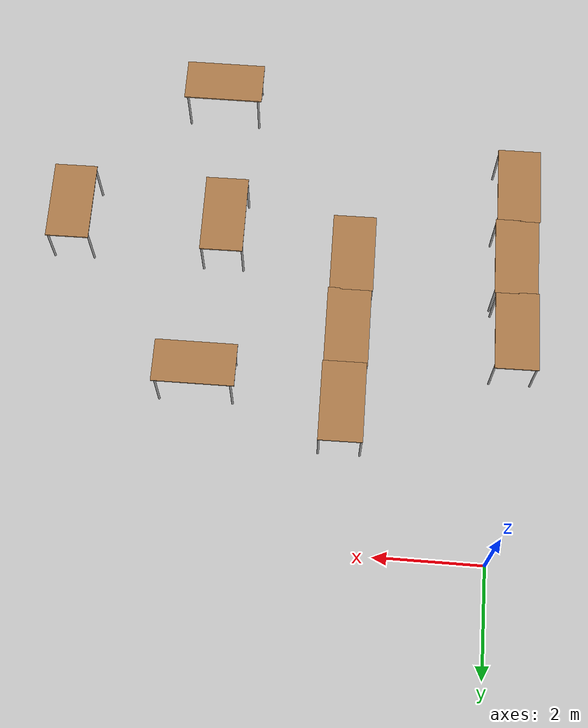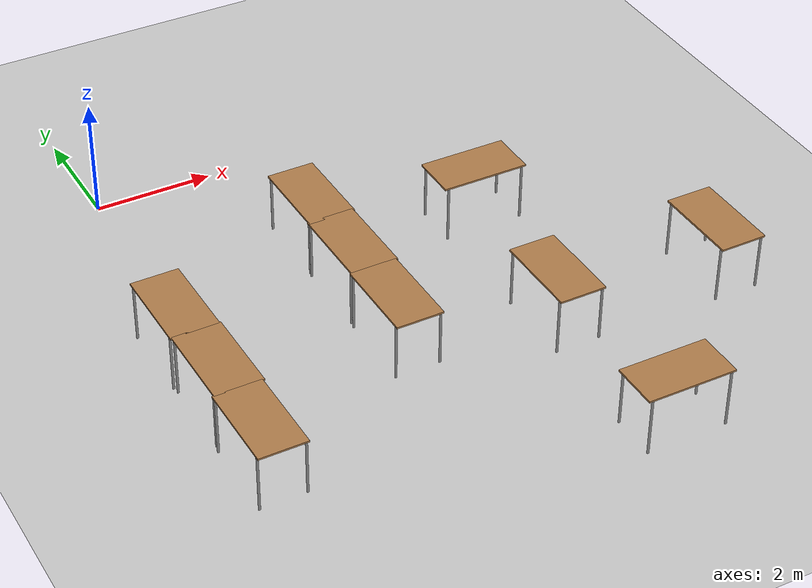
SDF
<sdf version="1.7">
 <world name="default">
  <model name="ground_plane">
   <static>1</static>
   <link name="link">
    <collision name="collision">
     <geometry><plane><normal>0 0 1</normal><size>100 100</size></plane></geometry>
     <surface><friction><ode><mu>100</mu><mu2>50</mu2></ode></friction></surface>
    </collision>
    <visual name="visual">
     <cast_shadows>0</cast_shadows>
     <geometry><plane><normal>0 0 1</normal><size>100 100</size></plane></geometry>
     <material>
      <script><uri>file://media/materials/scripts/gazebo.material</uri><name>Gazebo/Grey</name></script>
     </material>
    </visual>
   </link>
  </model>
  <model name="table_clone_6">
   <static>1</static>
   <link name="link">
    <collision name="surface">
     <pose>0 0 1 0 -0 0</pose>
     <geometry><box><size>1.5 0.8 0.03</size></box></geometry>
     <surface><friction><ode><mu>0.6</mu><mu2>0.6</mu2></ode></friction></surface>
    </collision>
    <visual name="visual1">
     <pose>0 0 1 0 -0 0</pose>
     <geometry><box><size>1.5 0.8 0.03</size></box></geometry>
     <material>
      <script><uri>file://media/materials/scripts/gazebo.material</uri><name>Gazebo/Wood</name></script>
     </material>
    </visual>
    <collision name="front_left_leg">
     <pose>0.68 0.38 0.5 0 -0 0</pose>
     <geometry><cylinder><radius>0.02</radius><length>1</length></cylinder></geometry>
    </collision>
    <visual name="front_left_leg">
     <pose>0.68 0.38 0.5 0 -0 0</pose>
     <geometry><cylinder><radius>0.02</radius><length>1</length></cylinder></geometry>
     <material>
      <script><uri>file://media/materials/scripts/gazebo.material</uri><name>Gazebo/Grey</name></script>
     </material>
    </visual>
    <collision name="front_right_leg">
     <pose>0.68 -0.38 0.5 0 -0 0</pose>
     <geometry><cylinder><radius>0.02</radius><length>1</length></cylinder></geometry>
    </collision>
    <visual name="front_right_leg">
     <pose>0.68 -0.38 0.5 0 -0 0</pose>
     <geometry><cylinder><radius>0.02</radius><length>1</length></cylinder></geometry>
     <material>
      <script><uri>file://media/materials/scripts/gazebo.material</uri><name>Gazebo/Grey</name></script>
     </material>
    </visual>
    <collision name="back_right_leg">
     <pose>-0.68 -0.38 0.5 0 -0 0</pose>
     <geometry><cylinder><radius>0.02</radius><length>1</length></cylinder></geometry>
    </collision>
    <visual name="back_right_leg">
     <pose>-0.68 -0.38 0.5 0 -0 0</pose>
     <geometry><cylinder><radius>0.02</radius><length>1</length></cylinder></geometry>
     <material>
      <script><uri>file://media/materials/scripts/gazebo.material</uri><name>Gazebo/Grey</name></script>
     </material>
    </visual>
    <collision name="back_left_leg">
     <pose>-0.68 0.38 0.5 0 -0 0</pose>
     <geometry><cylinder><radius>0.02</radius><length>1</length></cylinder></geometry>
    </collision>
    <visual name="back_left_leg">
     <pose>-0.68 0.38 0.5 0 -0 0</pose>
     <geometry><cylinder><radius>0.02</radius><length>1</length></cylinder></geometry>
     <material>
      <script><uri>file://media/materials/scripts/gazebo.material</uri><name>Gazebo/Grey</name></script>
     </material>
    </visual>
   </link>
   <pose>5.13857 -6.09069 0 0 0 -1.56386</pose>
  </model>
  <model name="table_clone_7">
   <static>1</static>
   <link name="link">
    <collision name="surface">
     <pose>0 0 1 0 -0 0</pose>
     <geometry><box><size>1.5 0.8 0.03</size></box></geometry>
     <surface><friction><ode><mu>0.6</mu><mu2>0.6</mu2></ode></friction></surface>
    </collision>
    <visual name="visual1">
     <pose>0 0 1 0 -0 0</pose>
     <geometry><box><size>1.5 0.8 0.03</size></box></geometry>
     <material>
      <script><uri>file://media/materials/scripts/gazebo.material</uri><name>Gazebo/Wood</name></script>
     </material>
    </visual>
    <collision name="front_left_leg">
     <pose>0.68 0.38 0.5 0 -0 0</pose>
     <geometry><cylinder><radius>0.02</radius><length>1</length></cylinder></geometry>
    </collision>
    <visual name="front_left_leg">
     <pose>0.68 0.38 0.5 0 -0 0</pose>
     <geometry><cylinder><radius>0.02</radius><length>1</length></cylinder></geometry>
     <material>
      <script><uri>file://media/materials/scripts/gazebo.material</uri><name>Gazebo/Grey</name></script>
     </material>
    </visual>
    <collision name="front_right_leg">
     <pose>0.68 -0.38 0.5 0 -0 0</pose>
     <geometry><cylinder><radius>0.02</radius><length>1</length></cylinder></geometry>
    </collision>
    <visual name="front_right_leg">
     <pose>0.68 -0.38 0.5 0 -0 0</pose>
     <geometry><cylinder><radius>0.02</radius><length>1</length></cylinder></geometry>
     <material>
      <script><uri>file://media/materials/scripts/gazebo.material</uri><name>Gazebo/Grey</name></script>
     </material>
    </visual>
    <collision name="back_right_leg">
     <pose>-0.68 -0.38 0.5 0 -0 0</pose>
     <geometry><cylinder><radius>0.02</radius><length>1</length></cylinder></geometry>
    </collision>
    <visual name="back_right_leg">
     <pose>-0.68 -0.38 0.5 0 -0 0</pose>
     <geometry><cylinder><radius>0.02</radius><length>1</length></cylinder></geometry>
     <material>
      <script><uri>file://media/materials/scripts/gazebo.material</uri><name>Gazebo/Grey</name></script>
     </material>
    </visual>
    <collision name="back_left_leg">
     <pose>-0.68 0.38 0.5 0 -0 0</pose>
     <geometry><cylinder><radius>0.02</radius><length>1</length></cylinder></geometry>
    </collision>
    <visual name="back_left_leg">
     <pose>-0.68 0.38 0.5 0 -0 0</pose>
     <geometry><cylinder><radius>0.02</radius><length>1</length></cylinder></geometry>
     <material>
      <script><uri>file://media/materials/scripts/gazebo.material</uri><name>Gazebo/Grey</name></script>
     </material>
    </visual>
   </link>
   <pose>8.0269 -6.15693 0 0 0 -1.56386</pose>
  </model>
  <model name="table_0">
   <static>1</static>
   <link name="link">
    <collision name="surface">
     <pose>0 0 1 0 -0 0</pose>
     <geometry><box><size>1.5 0.8 0.03</size></box></geometry>
     <surface><friction><ode><mu>0.6</mu><mu2>0.6</mu2></ode></friction></surface>
    </collision>
    <visual name="visual1">
     <pose>0 0 1 0 -0 0</pose>
     <geometry><box><size>1.5 0.8 0.03</size></box></geometry>
     <material>
      <script><uri>file://media/materials/scripts/gazebo.material</uri><name>Gazebo/Wood</name></script>
     </material>
    </visual>
    <collision name="front_left_leg">
     <pose>0.68 0.38 0.5 0 -0 0</pose>
     <geometry><cylinder><radius>0.02</radius><length>1</length></cylinder></geometry>
    </collision>
    <visual name="front_left_leg">
     <pose>0.68 0.38 0.5 0 -0 0</pose>
     <geometry><cylinder><radius>0.02</radius><length>1</length></cylinder></geometry>
     <material>
      <script><uri>file://media/materials/scripts/gazebo.material</uri><name>Gazebo/Grey</name></script>
     </material>
    </visual>
    <collision name="front_right_leg">
     <pose>0.68 -0.38 0.5 0 -0 0</pose>
     <geometry><cylinder><radius>0.02</radius><length>1</length></cylinder></geometry>
    </collision>
    <visual name="front_right_leg">
     <pose>0.68 -0.38 0.5 0 -0 0</pose>
     <geometry><cylinder><radius>0.02</radius><length>1</length></cylinder></geometry>
     <material>
      <script><uri>file://media/materials/scripts/gazebo.material</uri><name>Gazebo/Grey</name></script>
     </material>
    </visual>
    <collision name="back_right_leg">
     <pose>-0.68 -0.38 0.5 0 -0 0</pose>
     <geometry><cylinder><radius>0.02</radius><length>1</length></cylinder></geometry>
    </collision>
    <visual name="back_right_leg">
     <pose>-0.68 -0.38 0.5 0 -0 0</pose>
     <geometry><cylinder><radius>0.02</radius><length>1</length></cylinder></geometry>
     <material>
      <script><uri>file://media/materials/scripts/gazebo.material</uri><name>Gazebo/Grey</name></script>
     </material>
    </visual>
    <collision name="back_left_leg">
     <pose>-0.68 0.38 0.5 0 -0 0</pose>
     <geometry><cylinder><radius>0.02</radius><length>1</length></cylinder></geometry>
    </collision>
    <visual name="back_left_leg">
     <pose>-0.68 0.38 0.5 0 -0 0</pose>
     <geometry><cylinder><radius>0.02</radius><length>1</length></cylinder></geometry>
     <material>
      <script><uri>file://media/materials/scripts/gazebo.material</uri><name>Gazebo/Grey</name></script>
     </material>
    </visual>
   </link>
   <pose>5.39526 -3.0828 0 0 -0 0</pose>
  </model>
  <model name="table_0_clone">
   <static>1</static>
   <link name="link">
    <collision name="surface">
     <pose>0 0 1 0 -0 0</pose>
     <geometry><box><size>1.5 0.8 0.03</size></box></geometry>
     <surface><friction><ode><mu>0.6</mu><mu2>0.6</mu2></ode></friction></surface>
    </collision>
    <visual name="visual1">
     <pose>0 0 1 0 -0 0</pose>
     <geometry><box><size>1.5 0.8 0.03</size></box></geometry>
     <material>
      <script><uri>file://media/materials/scripts/gazebo.material</uri><name>Gazebo/Wood</name></script>
     </material>
    </visual>
    <collision name="front_left_leg">
     <pose>0.68 0.38 0.5 0 -0 0</pose>
     <geometry><cylinder><radius>0.02</radius><length>1</length></cylinder></geometry>
    </collision>
    <visual name="front_left_leg">
     <pose>0.68 0.38 0.5 0 -0 0</pose>
     <geometry><cylinder><radius>0.02</radius><length>1</length></cylinder></geometry>
     <material>
      <script><uri>file://media/materials/scripts/gazebo.material</uri><name>Gazebo/Grey</name></script>
     </material>
    </visual>
    <collision name="front_right_leg">
     <pose>0.68 -0.38 0.5 0 -0 0</pose>
     <geometry><cylinder><radius>0.02</radius><length>1</length></cylinder></geometry>
    </collision>
    <visual name="front_right_leg">
     <pose>0.68 -0.38 0.5 0 -0 0</pose>
     <geometry><cylinder><radius>0.02</radius><length>1</length></cylinder></geometry>
     <material>
      <script><uri>file://media/materials/scripts/gazebo.material</uri><name>Gazebo/Grey</name></script>
     </material>
    </visual>
    <collision name="back_right_leg">
     <pose>-0.68 -0.38 0.5 0 -0 0</pose>
     <geometry><cylinder><radius>0.02</radius><length>1</length></cylinder></geometry>
    </collision>
    <visual name="back_right_leg">
     <pose>-0.68 -0.38 0.5 0 -0 0</pose>
     <geometry><cylinder><radius>0.02</radius><length>1</length></cylinder></geometry>
     <material>
      <script><uri>file://media/materials/scripts/gazebo.material</uri><name>Gazebo/Grey</name></script>
     </material>
    </visual>
    <collision name="back_left_leg">
     <pose>-0.68 0.38 0.5 0 -0 0</pose>
     <geometry><cylinder><radius>0.02</radius><length>1</length></cylinder></geometry>
    </collision>
    <visual name="back_left_leg">
     <pose>-0.68 0.38 0.5 0 -0 0</pose>
     <geometry><cylinder><radius>0.02</radius><length>1</length></cylinder></geometry>
     <material>
      <script><uri>file://media/materials/scripts/gazebo.material</uri><name>Gazebo/Grey</name></script>
     </material>
    </visual>
   </link>
   <pose>5.39813 -8.96502 0 0 -0 0</pose>
  </model>
  <model name="table_clone_6_clone">
   <static>1</static>
   <link name="link">
    <collision name="surface">
     <pose>0 0 1 0 -0 0</pose>
     <geometry><box><size>1.5 0.8 0.03</size></box></geometry>
     <surface><friction><ode><mu>0.6</mu><mu2>0.6</mu2></ode></friction></surface>
    </collision>
    <visual name="visual1">
     <pose>0 0 1 0 -0 0</pose>
     <geometry><box><size>1.5 0.8 0.03</size></box></geometry>
     <material>
      <script><uri>file://media/materials/scripts/gazebo.material</uri><name>Gazebo/Wood</name></script>
     </material>
    </visual>
    <collision name="front_left_leg">
     <pose>0.68 0.38 0.5 0 -0 0</pose>
     <geometry><cylinder><radius>0.02</radius><length>1</length></cylinder></geometry>
    </collision>
    <visual name="front_left_leg">
     <pose>0.68 0.38 0.5 0 -0 0</pose>
     <geometry><cylinder><radius>0.02</radius><length>1</length></cylinder></geometry>
     <material>
      <script><uri>file://media/materials/scripts/gazebo.material</uri><name>Gazebo/Grey</name></script>
     </material>
    </visual>
    <collision name="front_right_leg">
     <pose>0.68 -0.38 0.5 0 -0 0</pose>
     <geometry><cylinder><radius>0.02</radius><length>1</length></cylinder></geometry>
    </collision>
    <visual name="front_right_leg">
     <pose>0.68 -0.38 0.5 0 -0 0</pose>
     <geometry><cylinder><radius>0.02</radius><length>1</length></cylinder></geometry>
     <material>
      <script><uri>file://media/materials/scripts/gazebo.material</uri><name>Gazebo/Grey</name></script>
     </material>
    </visual>
    <collision name="back_right_leg">
     <pose>-0.68 -0.38 0.5 0 -0 0</pose>
     <geometry><cylinder><radius>0.02</radius><length>1</length></cylinder></geometry>
    </collision>
    <visual name="back_right_leg">
     <pose>-0.68 -0.38 0.5 0 -0 0</pose>
     <geometry><cylinder><radius>0.02</radius><length>1</length></cylinder></geometry>
     <material>
      <script><uri>file://media/materials/scripts/gazebo.material</uri><name>Gazebo/Grey</name></script>
     </material>
    </visual>
    <collision name="back_left_leg">
     <pose>-0.68 0.38 0.5 0 -0 0</pose>
     <geometry><cylinder><radius>0.02</radius><length>1</length></cylinder></geometry>
    </collision>
    <visual name="back_left_leg">
     <pose>-0.68 0.38 0.5 0 -0 0</pose>
     <geometry><cylinder><radius>0.02</radius><length>1</length></cylinder></geometry>
     <material>
      <script><uri>file://media/materials/scripts/gazebo.material</uri><name>Gazebo/Grey</name></script>
     </material>
    </visual>
   </link>
   <pose>2.70321 -2.54791 0 0 0 -1.56386</pose>
  </model>
  <model name="table_clone_6_clone_0">
   <static>1</static>
   <link name="link">
    <collision name="surface">
     <pose>0 0 1 0 -0 0</pose>
     <geometry><box><size>1.5 0.8 0.03</size></box></geometry>
     <surface><friction><ode><mu>0.6</mu><mu2>0.6</mu2></ode></friction></surface>
    </collision>
    <visual name="visual1">
     <pose>0 0 1 0 -0 0</pose>
     <geometry><box><size>1.5 0.8 0.03</size></box></geometry>
     <material>
      <script><uri>file://media/materials/scripts/gazebo.material</uri><name>Gazebo/Wood</name></script>
     </material>
    </visual>
    <collision name="front_left_leg">
     <pose>0.68 0.38 0.5 0 -0 0</pose>
     <geometry><cylinder><radius>0.02</radius><length>1</length></cylinder></geometry>
    </collision>
    <visual name="front_left_leg">
     <pose>0.68 0.38 0.5 0 -0 0</pose>
     <geometry><cylinder><radius>0.02</radius><length>1</length></cylinder></geometry>
     <material>
      <script><uri>file://media/materials/scripts/gazebo.material</uri><name>Gazebo/Grey</name></script>
     </material>
    </visual>
    <collision name="front_right_leg">
     <pose>0.68 -0.38 0.5 0 -0 0</pose>
     <geometry><cylinder><radius>0.02</radius><length>1</length></cylinder></geometry>
    </collision>
    <visual name="front_right_leg">
     <pose>0.68 -0.38 0.5 0 -0 0</pose>
     <geometry><cylinder><radius>0.02</radius><length>1</length></cylinder></geometry>
     <material>
      <script><uri>file://media/materials/scripts/gazebo.material</uri><name>Gazebo/Grey</name></script>
     </material>
    </visual>
    <collision name="back_right_leg">
     <pose>-0.68 -0.38 0.5 0 -0 0</pose>
     <geometry><cylinder><radius>0.02</radius><length>1</length></cylinder></geometry>
    </collision>
    <visual name="back_right_leg">
     <pose>-0.68 -0.38 0.5 0 -0 0</pose>
     <geometry><cylinder><radius>0.02</radius><length>1</length></cylinder></geometry>
     <material>
      <script><uri>file://media/materials/scripts/gazebo.material</uri><name>Gazebo/Grey</name></script>
     </material>
    </visual>
    <collision name="back_left_leg">
     <pose>-0.68 0.38 0.5 0 -0 0</pose>
     <geometry><cylinder><radius>0.02</radius><length>1</length></cylinder></geometry>
    </collision>
    <visual name="back_left_leg">
     <pose>-0.68 0.38 0.5 0 -0 0</pose>
     <geometry><cylinder><radius>0.02</radius><length>1</length></cylinder></geometry>
     <material>
      <script><uri>file://media/materials/scripts/gazebo.material</uri><name>Gazebo/Grey</name></script>
     </material>
    </visual>
   </link>
   <pose>2.69684 -3.98848 0 0 0 -1.56386</pose>
  </model>
  <model name="table_clone_6_clone_1">
   <static>1</static>
   <link name="link">
    <collision name="surface">
     <pose>0 0 1 0 -0 0</pose>
     <geometry><box><size>1.5 0.8 0.03</size></box></geometry>
     <surface><friction><ode><mu>0.6</mu><mu2>0.6</mu2></ode></friction></surface>
    </collision>
    <visual name="visual1">
     <pose>0 0 1 0 -0 0</pose>
     <geometry><box><size>1.5 0.8 0.03</size></box></geometry>
     <material>
      <script><uri>file://media/materials/scripts/gazebo.material</uri><name>Gazebo/Wood</name></script>
     </material>
    </visual>
    <collision name="front_left_leg">
     <pose>0.68 0.38 0.5 0 -0 0</pose>
     <geometry><cylinder><radius>0.02</radius><length>1</length></cylinder></geometry>
    </collision>
    <visual name="front_left_leg">
     <pose>0.68 0.38 0.5 0 -0 0</pose>
     <geometry><cylinder><radius>0.02</radius><length>1</length></cylinder></geometry>
     <material>
      <script><uri>file://media/materials/scripts/gazebo.material</uri><name>Gazebo/Grey</name></script>
     </material>
    </visual>
    <collision name="front_right_leg">
     <pose>0.68 -0.38 0.5 0 -0 0</pose>
     <geometry><cylinder><radius>0.02</radius><length>1</length></cylinder></geometry>
    </collision>
    <visual name="front_right_leg">
     <pose>0.68 -0.38 0.5 0 -0 0</pose>
     <geometry><cylinder><radius>0.02</radius><length>1</length></cylinder></geometry>
     <material>
      <script><uri>file://media/materials/scripts/gazebo.material</uri><name>Gazebo/Grey</name></script>
     </material>
    </visual>
    <collision name="back_right_leg">
     <pose>-0.68 -0.38 0.5 0 -0 0</pose>
     <geometry><cylinder><radius>0.02</radius><length>1</length></cylinder></geometry>
    </collision>
    <visual name="back_right_leg">
     <pose>-0.68 -0.38 0.5 0 -0 0</pose>
     <geometry><cylinder><radius>0.02</radius><length>1</length></cylinder></geometry>
     <material>
      <script><uri>file://media/materials/scripts/gazebo.material</uri><name>Gazebo/Grey</name></script>
     </material>
    </visual>
    <collision name="back_left_leg">
     <pose>-0.68 0.38 0.5 0 -0 0</pose>
     <geometry><cylinder><radius>0.02</radius><length>1</length></cylinder></geometry>
    </collision>
    <visual name="back_left_leg">
     <pose>-0.68 0.38 0.5 0 -0 0</pose>
     <geometry><cylinder><radius>0.02</radius><length>1</length></cylinder></geometry>
     <material>
      <script><uri>file://media/materials/scripts/gazebo.material</uri><name>Gazebo/Grey</name></script>
     </material>
    </visual>
   </link>
   <pose>2.68434 -5.46471 0 0 0 -1.56386</pose>
  </model>
  <model name="table_clone_6_clone_2">
   <static>1</static>
   <link name="link">
    <collision name="surface">
     <pose>0 0 1 0 -0 0</pose>
     <geometry><box><size>1.5 0.8 0.03</size></box></geometry>
     <surface><friction><ode><mu>0.6</mu><mu2>0.6</mu2></ode></friction></surface>
    </collision>
    <visual name="visual1">
     <pose>0 0 1 0 -0 0</pose>
     <geometry><box><size>1.5 0.8 0.03</size></box></geometry>
     <material>
      <script><uri>file://media/materials/scripts/gazebo.material</uri><name>Gazebo/Wood</name></script>
     </material>
    </visual>
    <collision name="front_left_leg">
     <pose>0.68 0.38 0.5 0 -0 0</pose>
     <geometry><cylinder><radius>0.02</radius><length>1</length></cylinder></geometry>
    </collision>
    <visual name="front_left_leg">
     <pose>0.68 0.38 0.5 0 -0 0</pose>
     <geometry><cylinder><radius>0.02</radius><length>1</length></cylinder></geometry>
     <material>
      <script><uri>file://media/materials/scripts/gazebo.material</uri><name>Gazebo/Grey</name></script>
     </material>
    </visual>
    <collision name="front_right_leg">
     <pose>0.68 -0.38 0.5 0 -0 0</pose>
     <geometry><cylinder><radius>0.02</radius><length>1</length></cylinder></geometry>
    </collision>
    <visual name="front_right_leg">
     <pose>0.68 -0.38 0.5 0 -0 0</pose>
     <geometry><cylinder><radius>0.02</radius><length>1</length></cylinder></geometry>
     <material>
      <script><uri>file://media/materials/scripts/gazebo.material</uri><name>Gazebo/Grey</name></script>
     </material>
    </visual>
    <collision name="back_right_leg">
     <pose>-0.68 -0.38 0.5 0 -0 0</pose>
     <geometry><cylinder><radius>0.02</radius><length>1</length></cylinder></geometry>
    </collision>
    <visual name="back_right_leg">
     <pose>-0.68 -0.38 0.5 0 -0 0</pose>
     <geometry><cylinder><radius>0.02</radius><length>1</length></cylinder></geometry>
     <material>
      <script><uri>file://media/materials/scripts/gazebo.material</uri><name>Gazebo/Grey</name></script>
     </material>
    </visual>
    <collision name="back_left_leg">
     <pose>-0.68 0.38 0.5 0 -0 0</pose>
     <geometry><cylinder><radius>0.02</radius><length>1</length></cylinder></geometry>
    </collision>
    <visual name="back_left_leg">
     <pose>-0.68 0.38 0.5 0 -0 0</pose>
     <geometry><cylinder><radius>0.02</radius><length>1</length></cylinder></geometry>
     <material>
      <script><uri>file://media/materials/scripts/gazebo.material</uri><name>Gazebo/Grey</name></script>
     </material>
    </visual>
   </link>
   <pose>-0.369132 -4.12755 0 0 0 -1.56386</pose>
  </model>
  <model name="table_clone_6_clone_3">
   <static>1</static>
   <link name="link">
    <collision name="surface">
     <pose>0 0 1 0 -0 0</pose>
     <geometry><box><size>1.5 0.8 0.03</size></box></geometry>
     <surface><friction><ode><mu>0.6</mu><mu2>0.6</mu2></ode></friction></surface>
    </collision>
    <visual name="visual1">
     <pose>0 0 1 0 -0 0</pose>
     <geometry><box><size>1.5 0.8 0.03</size></box></geometry>
     <material>
      <script><uri>file://media/materials/scripts/gazebo.material</uri><name>Gazebo/Wood</name></script>
     </material>
    </visual>
    <collision name="front_left_leg">
     <pose>0.68 0.38 0.5 0 -0 0</pose>
     <geometry><cylinder><radius>0.02</radius><length>1</length></cylinder></geometry>
    </collision>
    <visual name="front_left_leg">
     <pose>0.68 0.38 0.5 0 -0 0</pose>
     <geometry><cylinder><radius>0.02</radius><length>1</length></cylinder></geometry>
     <material>
      <script><uri>file://media/materials/scripts/gazebo.material</uri><name>Gazebo/Grey</name></script>
     </material>
    </visual>
    <collision name="front_right_leg">
     <pose>0.68 -0.38 0.5 0 -0 0</pose>
     <geometry><cylinder><radius>0.02</radius><length>1</length></cylinder></geometry>
    </collision>
    <visual name="front_right_leg">
     <pose>0.68 -0.38 0.5 0 -0 0</pose>
     <geometry><cylinder><radius>0.02</radius><length>1</length></cylinder></geometry>
     <material>
      <script><uri>file://media/materials/scripts/gazebo.material</uri><name>Gazebo/Grey</name></script>
     </material>
    </visual>
    <collision name="back_right_leg">
     <pose>-0.68 -0.38 0.5 0 -0 0</pose>
     <geometry><cylinder><radius>0.02</radius><length>1</length></cylinder></geometry>
    </collision>
    <visual name="back_right_leg">
     <pose>-0.68 -0.38 0.5 0 -0 0</pose>
     <geometry><cylinder><radius>0.02</radius><length>1</length></cylinder></geometry>
     <material>
      <script><uri>file://media/materials/scripts/gazebo.material</uri><name>Gazebo/Grey</name></script>
     </material>
    </visual>
    <collision name="back_left_leg">
     <pose>-0.68 0.38 0.5 0 -0 0</pose>
     <geometry><cylinder><radius>0.02</radius><length>1</length></cylinder></geometry>
    </collision>
    <visual name="back_left_leg">
     <pose>-0.68 0.38 0.5 0 -0 0</pose>
     <geometry><cylinder><radius>0.02</radius><length>1</length></cylinder></geometry>
     <material>
      <script><uri>file://media/materials/scripts/gazebo.material</uri><name>Gazebo/Grey</name></script>
     </material>
    </visual>
   </link>
   <pose>-0.339094 -5.60557 0 0 0 -1.56386</pose>
  </model>
  <model name="table_clone_6_clone_4">
   <static>1</static>
   <link name="link">
    <collision name="surface">
     <pose>0 0 1 0 -0 0</pose>
     <geometry><box><size>1.5 0.8 0.03</size></box></geometry>
     <surface><friction><ode><mu>0.6</mu><mu2>0.6</mu2></ode></friction></surface>
    </collision>
    <visual name="visual1">
     <pose>0 0 1 0 -0 0</pose>
     <geometry><box><size>1.5 0.8 0.03</size></box></geometry>
     <material>
      <script><uri>file://media/materials/scripts/gazebo.material</uri><name>Gazebo/Wood</name></script>
     </material>
    </visual>
    <collision name="front_left_leg">
     <pose>0.68 0.38 0.5 0 -0 0</pose>
     <geometry><cylinder><radius>0.02</radius><length>1</length></cylinder></geometry>
    </collision>
    <visual name="front_left_leg">
     <pose>0.68 0.38 0.5 0 -0 0</pose>
     <geometry><cylinder><radius>0.02</radius><length>1</length></cylinder></geometry>
     <material>
      <script><uri>file://media/materials/scripts/gazebo.material</uri><name>Gazebo/Grey</name></script>
     </material>
    </visual>
    <collision name="front_right_leg">
     <pose>0.68 -0.38 0.5 0 -0 0</pose>
     <geometry><cylinder><radius>0.02</radius><length>1</length></cylinder></geometry>
    </collision>
    <visual name="front_right_leg">
     <pose>0.68 -0.38 0.5 0 -0 0</pose>
     <geometry><cylinder><radius>0.02</radius><length>1</length></cylinder></geometry>
     <material>
      <script><uri>file://media/materials/scripts/gazebo.material</uri><name>Gazebo/Grey</name></script>
     </material>
    </visual>
    <collision name="back_right_leg">
     <pose>-0.68 -0.38 0.5 0 -0 0</pose>
     <geometry><cylinder><radius>0.02</radius><length>1</length></cylinder></geometry>
    </collision>
    <visual name="back_right_leg">
     <pose>-0.68 -0.38 0.5 0 -0 0</pose>
     <geometry><cylinder><radius>0.02</radius><length>1</length></cylinder></geometry>
     <material>
      <script><uri>file://media/materials/scripts/gazebo.material</uri><name>Gazebo/Grey</name></script>
     </material>
    </visual>
    <collision name="back_left_leg">
     <pose>-0.68 0.38 0.5 0 -0 0</pose>
     <geometry><cylinder><radius>0.02</radius><length>1</length></cylinder></geometry>
    </collision>
    <visual name="back_left_leg">
     <pose>-0.68 0.38 0.5 0 -0 0</pose>
     <geometry><cylinder><radius>0.02</radius><length>1</length></cylinder></geometry>
     <material>
      <script><uri>file://media/materials/scripts/gazebo.material</uri><name>Gazebo/Grey</name></script>
     </material>
    </visual>
   </link>
   <pose>-0.358592 -7.08688 0 0 0 -1.56386</pose>
  </model>
 </world>
</sdf>
